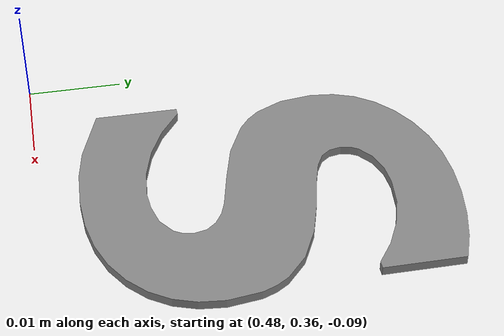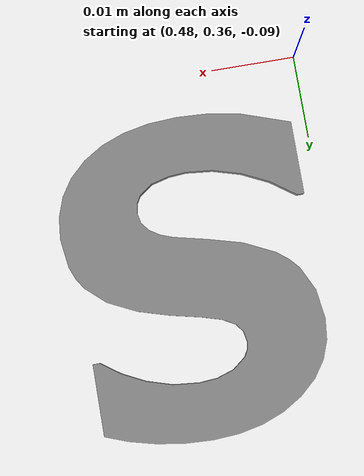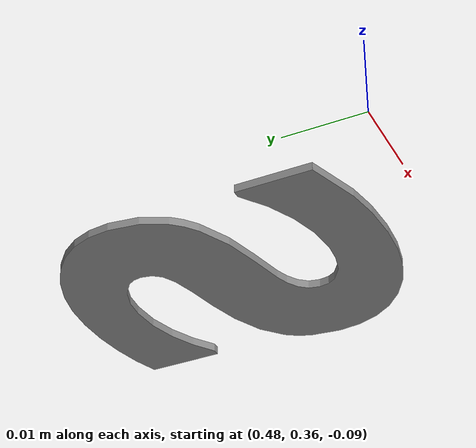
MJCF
<mujoco model="original-118">
  <default>
    <default class="visual">
      <geom group="2" type="mesh" contype="0" conaffinity="0"/>
    </default>
    <default class="collision">
      <geom group="3" type="mesh"/>
    </default>
  </default>
  <asset>
    <material name="material_0_0" specular="0.06666666666666667" shininess="0.03" rgba="0.5294117647058824 0.5294117647058824 0.5294117647058824 1"/>
    <mesh file="original-118.obj"/>
  </asset>
  <worldbody>
    <body name="original-118">
      <geom material="material_0_0" mesh="original-118" class="visual"/>
      <geom mesh="original-118" class="collision"/>
    </body>
  </worldbody>
</mujoco>
